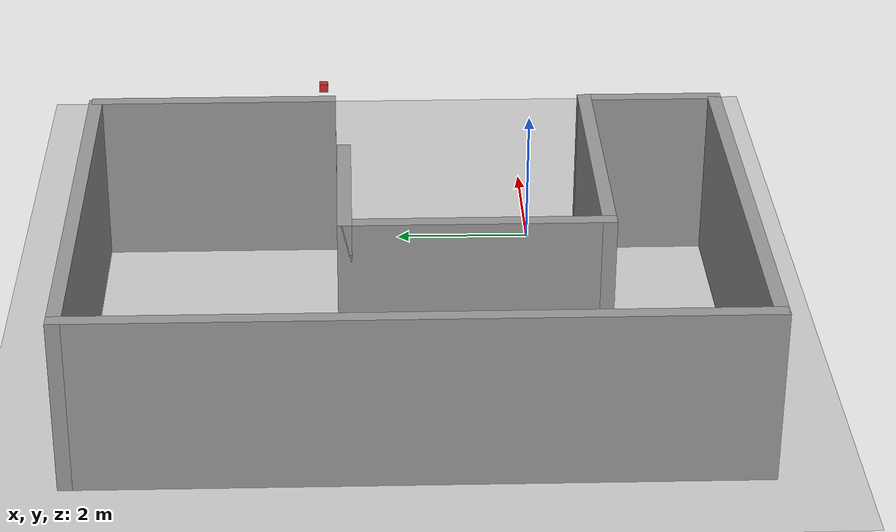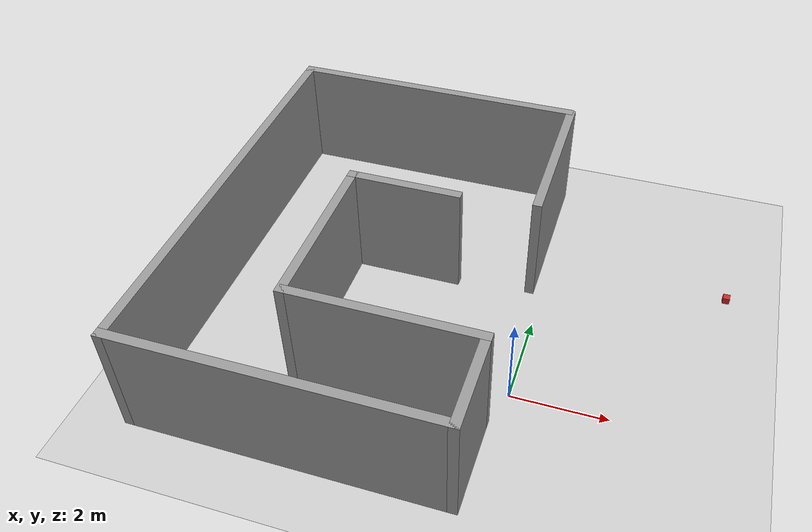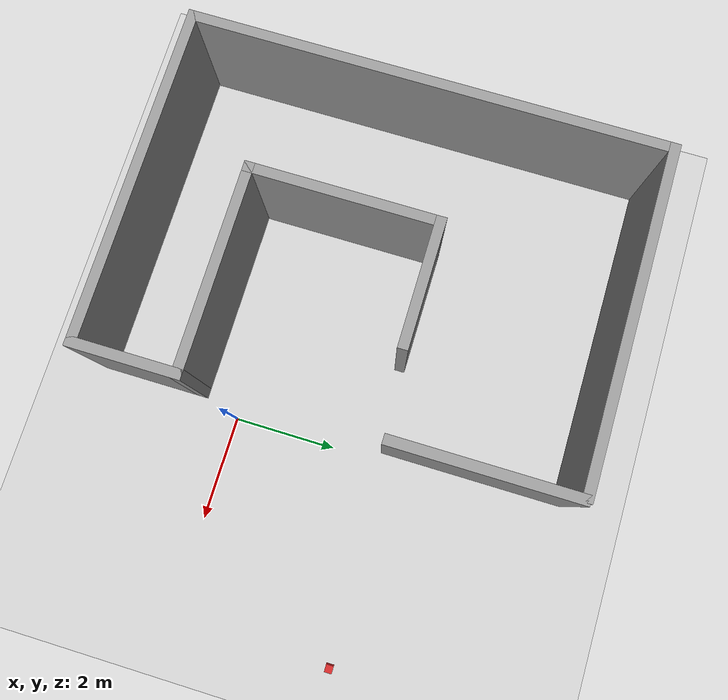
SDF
<sdf version="1.4">
 <world name="default">
  <include><uri>model://ground_plane</uri></include>
  <include><uri>model://sun</uri></include>
  <include><uri>model://my_walls</uri></include>
  <include><uri>model://demo_cube</uri><pose>3.8 3.15 0.83 0 0 0</pose></include>
 </world>
</sdf>

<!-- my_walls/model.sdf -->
<sdf version='1.4'>
  <model name='my_building_plan'>
    <link name='Wall_10'>
      <collision name='Wall_10_Collision'>
        <geometry>
          <box>
            <size>3.80055 0.2 2.5</size>
          </box>
        </geometry>
        <pose>0 0 1.25 0 -0 0</pose>
      </collision>
      <visual name='Wall_10_Visual'>
        <pose>0 0 1.25 0 -0 0</pose>
        <geometry>
          <box>
            <size>3.80055 0.2 2.5</size>
          </box>
        </geometry>
        <material>
          <script>
            <uri>file://media/materials/scripts/gazebo.material</uri>
            <name>Gazebo/Grey</name>
          </script>
        </material>
      </visual>
      <velocity_decay>
        <linear>0</linear>
        <angular>0</angular>
      </velocity_decay>
      <pose>-4.25321 1.01532 0 0 -0 1.5708</pose>
    </link>
    <link name='Wall_11'>
      <collision name='Wall_11_Collision'>
        <geometry>
          <box>
            <size>2.50597 0.2 2.5</size>
          </box>
        </geometry>
        <pose>0 0 1.25 0 -0 0</pose>
      </collision>
      <visual name='Wall_11_Visual'>
        <pose>0 0 1.25 0 -0 0</pose>
        <geometry>
          <box>
            <size>2.50597 0.2 2.5</size>
          </box>
        </geometry>
        <material>
          <script>
            <uri>file://media/materials/scripts/gazebo.material</uri>
            <name>Gazebo/Grey</name>
          </script>
        </material>
      </visual>
      <velocity_decay>
        <linear>0</linear>
        <angular>0</angular>
      </velocity_decay>
      <pose>-3.10023 2.81559 0 0 -0 0</pose>
    </link>
    <link name='Wall_2'>
      <collision name='Wall_2_Collision'>
        <geometry>
          <box>
            <size>3.62355 0.2 2.5</size>
          </box>
        </geometry>
        <pose>0 0 1.25 0 -0 0</pose>
      </collision>
      <visual name='Wall_2_Visual'>
        <pose>0 0 1.25 0 -0 0</pose>
        <geometry>
          <box>
            <size>3.62355 0.2 2.5</size>
          </box>
        </geometry>
        <material>
          <script>
            <uri>file://media/materials/scripts/gazebo.material</uri>
            <name>Gazebo/Grey</name>
          </script>
        </material>
      </visual>
      <velocity_decay>
        <linear>0</linear>
        <angular>0</angular>
      </velocity_decay>
      <pose>-0.280335 4.74515 0 0 -0 1.5708</pose>
    </link>
    <link name='Wall_5'>
      <collision name='Wall_5_Collision'>
        <geometry>
          <box>
            <size>6.67289 0.2 2.5</size>
          </box>
        </geometry>
        <pose>0 0 1.25 0 -0 0</pose>
      </collision>
      <visual name='Wall_5_Visual'>
        <pose>0 0 1.25 0 -0 0</pose>
        <geometry>
          <box>
            <size>6.67289 0.2 2.5</size>
          </box>
        </geometry>
        <material>
          <script>
            <uri>file://media/materials/scripts/gazebo.material</uri>
            <name>Gazebo/Grey</name>
          </script>
        </material>
      </visual>
      <velocity_decay>
        <linear>0</linear>
        <angular>0</angular>
      </velocity_decay>
      <pose>-3.56547 6.49705 0 0 -0 3.14159</pose>
    </link>
    <link name='Wall_6'>
      <collision name='Wall_6_Collision'>
        <geometry>
          <box>
            <size>9.42387 0.2 2.5</size>
          </box>
        </geometry>
        <pose>0 0 1.25 0 -0 0</pose>
      </collision>
      <visual name='Wall_6_Visual'>
        <pose>0 0 1.25 0 -0 0</pose>
        <geometry>
          <box>
            <size>9.42387 0.2 2.5</size>
          </box>
        </geometry>
        <material>
          <script>
            <uri>file://media/materials/scripts/gazebo.material</uri>
            <name>Gazebo/Grey</name>
          </script>
        </material>
      </visual>
      <velocity_decay>
        <linear>0</linear>
        <angular>0</angular>
      </velocity_decay>
      <pose>-6.80192 1.88511 0 0 0 -1.5708</pose>
    </link>
    <link name='Wall_7'>
      <collision name='Wall_7_Collision'>
        <geometry>
          <box>
            <size>6.67289 0.2 2.5</size>
          </box>
        </geometry>
        <pose>0 0 1.25 0 -0 0</pose>
      </collision>
      <visual name='Wall_7_Visual'>
        <pose>0 0 1.25 0 -0 0</pose>
        <geometry>
          <box>
            <size>6.67289 0.2 2.5</size>
          </box>
        </geometry>
        <material>
          <script>
            <uri>file://media/materials/scripts/gazebo.material</uri>
            <name>Gazebo/Grey</name>
          </script>
        </material>
      </visual>
      <velocity_decay>
        <linear>0</linear>
        <angular>0</angular>
      </velocity_decay>
      <pose>-3.56547 -2.72682 0 0 -0 0</pose>
    </link>
    //! if (true) {
    <link name='Wall_8'>
      <collision name='Wall_8_Collision'>
        <geometry>
          <box>
            <size>2.14187 0.2 2.5</size>
          </box>
        </geometry>
        <pose>0 0 1.25 0 -0 0</pose>
      </collision>
      <visual name='Wall_8_Visual'>
        <pose>0 0 1.25 0 -0 0</pose>
        <geometry>
          <box>
            <size>2.14187 0.2 2.5</size>
          </box>
        </geometry>
        <material>
          <script>
            <uri>file://media/materials/scripts/gazebo.material</uri>
            <name>Gazebo/Grey</name>
          </script>
        </material>
      </visual>
      <velocity_decay>
        <linear>0</linear>
        <angular>0</angular>
      </velocity_decay>
      <pose>-0.329024 -1.75589 0 0 -0 1.5708</pose>
    </link>
    //! }
    <link name='Wall_9'>
      <collision name='Wall_9_Collision'>
        <geometry>
          <box>
            <size>4.12419 0.2 2.5</size>
          </box>
        </geometry>
        <pose>0 0 1.25 0 -0 0</pose>
      </collision>
      <visual name='Wall_9_Visual'>
        <pose>0 0 1.25 0 -0 0</pose>
        <geometry>
          <box>
            <size>4.12419 0.2 2.5</size>
          </box>
        </geometry>
        <material>
          <script>
            <uri>file://media/materials/scripts/gazebo.material</uri>
            <name>Gazebo/Grey</name>
          </script>
        </material>
      </visual>
      <velocity_decay>
        <linear>0</linear>
        <angular>0</angular>
      </velocity_decay>
      <pose>-2.29112 -0.784955 0 0 -0 3.14159</pose>
    </link>
    <static>1</static>
  </model>
</sdf>

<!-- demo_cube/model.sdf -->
<sdf version='1.4'>
  <model name="demo_cube">
      <static>0</static>
      <link name='link'>
        <inertial>
          <mass>2.25</mass>
          <inertia>
            <ixx>0.001</ixx>
            <ixy>0.000000</ixy>
            <ixz>0.000000</ixz>
            <iyy>0.001</iyy>
            <iyz>0.000000</iyz>
            <izz>0.001</izz>
          </inertia>
        </inertial>
        <collision name='collision'>
          <geometry>
            <box>
              <size>0.14 0.14 0.14</size>
            </box>
          </geometry>
          <surface>
            <friction>
              <ode>
                <mu>20.0</mu>
                <mu2>20.0</mu2>
              </ode>
            </friction>
            <contact>
              <ode>
                <kp>1000000.0</kp>
                <kd>100.0</kd>
                <max_vel>1.0</max_vel>
                <min_depth>0.002</min_depth>
              </ode>
            </contact>
          </surface>
        </collision>
        <visual name='visual'>
          <geometry>
            <box>
              <size>0.14 0.14 0.14</size>
            </box>
          </geometry>
          <material>
            <script>
              <uri>file://media/materials/scripts/gazebo.material</uri>
              <name>Gazebo/Red</name>
            </script>
          </material>
        </visual>
        <velocity_decay>
          <linear>0.000000</linear>
          <angular>0.000000</angular>
        </velocity_decay>
        <self_collide>0</self_collide>
        <kinematic>0</kinematic>
        <gravity>1</gravity>
      </link>
  </model>
</sdf>
